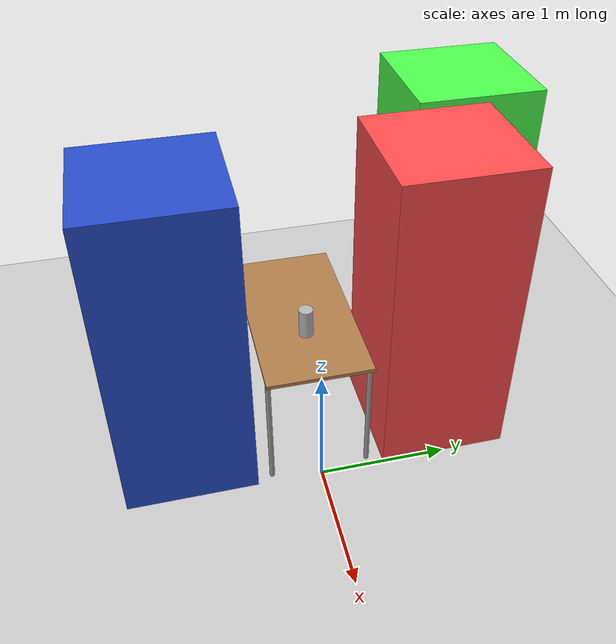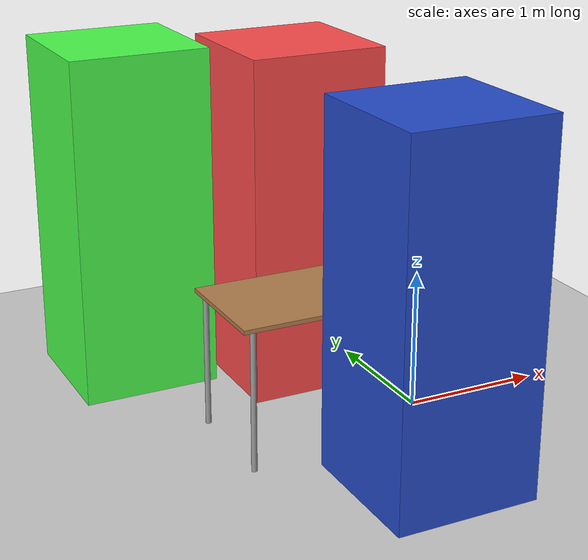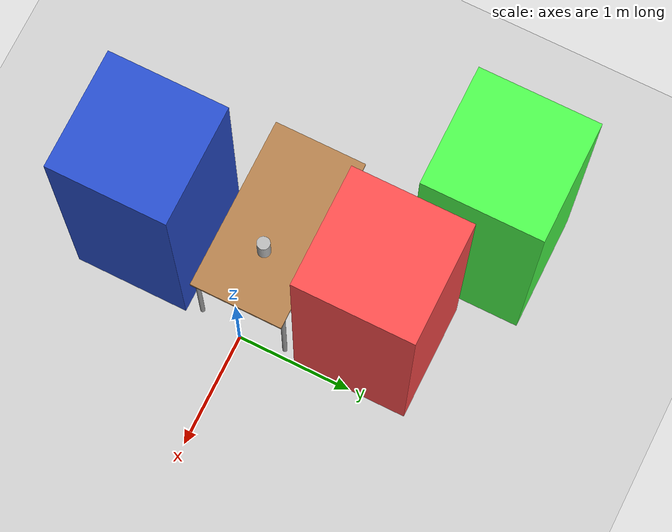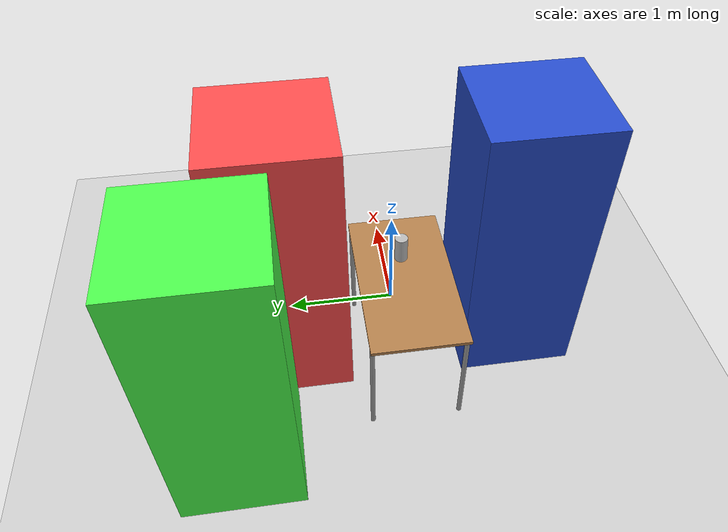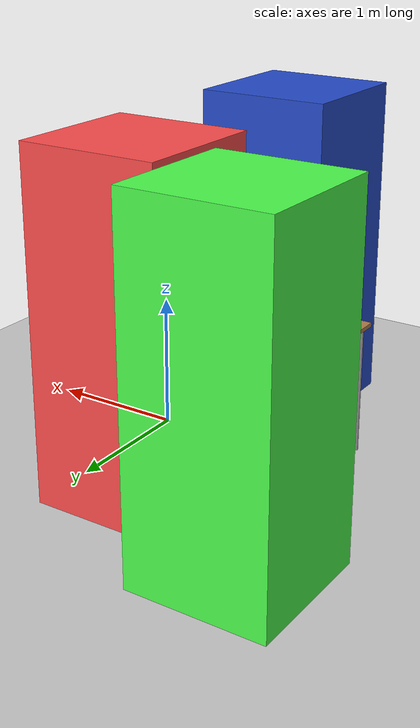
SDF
<sdf version="1.6">
 <world name="default">
  <light name="sun" type="directional">
   <pose>0 0 10 0 -0 0</pose>
   <diffuse>0.8 0.8 0.8 1</diffuse>
   <specular>0.2 0.2 0.2 1</specular>
   <attenuation>
    <range>1000</range>
    <constant>0.9</constant>
    <linear>0.01</linear>
    <quadratic>0.001</quadratic>
   </attenuation>
   <direction>-0.5 0.1 -0.9</direction>
  </light>
  <model name="ground_plane">
   <static>1</static>
   <link name="link">
    <collision name="collision">
     <geometry><plane><normal>0 0 1</normal><size>100 100</size></plane></geometry>
     <surface><friction><ode><mu>100</mu><mu2>50</mu2></ode></friction></surface>
    </collision>
    <visual name="visual">
     <cast_shadows>0</cast_shadows>
     <geometry><plane><normal>0 0 1</normal><size>100 100</size></plane></geometry>
     <material>
      <script><uri>file://media/materials/scripts/gazebo.material</uri><name>Gazebo/Grey</name></script>
     </material>
    </visual>
   </link>
  </model>
  <gravity>0 0 -9.8</gravity>
  <magnetic_field>6e-06 2.3e-05 -4.2e-05</magnetic_field>
  <atmosphere type="adiabatic"/>
  <physics name="default_physics" default="0" type="ode">
   <max_step_size>0.001</max_step_size>
   <real_time_factor>1</real_time_factor>
   <real_time_update_rate>1000</real_time_update_rate>
  </physics>
  <scene><ambient>0.4 0.4 0.4 1</ambient><background>0.7 0.7 0.7 1</background><shadows>1</shadows></scene>
  <spherical_coordinates>
   <surface_model>EARTH_WGS84</surface_model>
   <latitude_deg>0</latitude_deg>
   <longitude_deg>0</longitude_deg>
   <elevation>0</elevation>
   <heading_deg>0</heading_deg>
  </spherical_coordinates>
  <model name="table">
   <static>1</static>
   <link name="link">
    <collision name="surface">
     <pose>0 0 1 0 -0 0</pose>
     <geometry><box><size>1.5 0.8 0.03</size></box></geometry>
     <surface><friction><ode><mu>0.6</mu><mu2>0.6</mu2></ode></friction></surface>
    </collision>
    <visual name="visual1">
     <pose>0 0 1 0 -0 0</pose>
     <geometry><box><size>1.5 0.8 0.03</size></box></geometry>
     <material>
      <script><uri>file://media/materials/scripts/gazebo.material</uri><name>Gazebo/Wood</name></script>
     </material>
    </visual>
    <collision name="front_left_leg">
     <pose>0.68 0.38 0.5 0 -0 0</pose>
     <geometry><cylinder><radius>0.02</radius><length>1</length></cylinder></geometry>
    </collision>
    <visual name="front_left_leg">
     <pose>0.68 0.38 0.5 0 -0 0</pose>
     <geometry><cylinder><radius>0.02</radius><length>1</length></cylinder></geometry>
     <material>
      <script><uri>file://media/materials/scripts/gazebo.material</uri><name>Gazebo/Grey</name></script>
     </material>
    </visual>
    <collision name="front_right_leg">
     <pose>0.68 -0.38 0.5 0 -0 0</pose>
     <geometry><cylinder><radius>0.02</radius><length>1</length></cylinder></geometry>
    </collision>
    <visual name="front_right_leg">
     <pose>0.68 -0.38 0.5 0 -0 0</pose>
     <geometry><cylinder><radius>0.02</radius><length>1</length></cylinder></geometry>
     <material>
      <script><uri>file://media/materials/scripts/gazebo.material</uri><name>Gazebo/Grey</name></script>
     </material>
    </visual>
    <collision name="back_right_leg">
     <pose>-0.68 -0.38 0.5 0 -0 0</pose>
     <geometry><cylinder><radius>0.02</radius><length>1</length></cylinder></geometry>
    </collision>
    <visual name="back_right_leg">
     <pose>-0.68 -0.38 0.5 0 -0 0</pose>
     <geometry><cylinder><radius>0.02</radius><length>1</length></cylinder></geometry>
     <material>
      <script><uri>file://media/materials/scripts/gazebo.material</uri><name>Gazebo/Grey</name></script>
     </material>
    </visual>
    <collision name="back_left_leg">
     <pose>-0.68 0.38 0.5 0 -0 0</pose>
     <geometry><cylinder><radius>0.02</radius><length>1</length></cylinder></geometry>
    </collision>
    <visual name="back_left_leg">
     <pose>-0.68 0.38 0.5 0 -0 0</pose>
     <geometry><cylinder><radius>0.02</radius><length>1</length></cylinder></geometry>
     <material>
      <script><uri>file://media/materials/scripts/gazebo.material</uri><name>Gazebo/Grey</name></script>
     </material>
    </visual>
   </link>
   <pose>-0.75 0 0 0 -0 0</pose>
  </model>
  <model name="unit_box_blue">
   <link name="link">
    <inertial>
     <mass>1</mass>
     <inertia>
      <ixx>0.166667</ixx>
      <ixy>0</ixy>
      <ixz>0</ixz>
      <iyy>0.166667</iyy>
      <iyz>0</iyz>
      <izz>0.166667</izz>
     </inertia>
     <pose>0 0 1 0 -0 0</pose>
    </inertial>
    <visual name="visual">
     <geometry><box><size>1 1 2.5</size></box></geometry>
     <material>
      <script><name>Gazebo/Blue</name><uri>file://media/materials/scripts/gazebo.material</uri></script>
      <shader type="pixel"><normal_map>__default__</normal_map></shader>
      <ambient>0.3 0.3 1 1</ambient>
      <diffuse>0.7 0.7 1 1</diffuse>
      <specular>0.01 0.01 0.01 1</specular>
      <emissive>0 0 0 1</emissive>
     </material>
    </visual>
    <collision name="collision">
     <geometry><box><size>1 1 2.5</size></box></geometry>
     <surface>
      <friction>
       <ode><mu>1</mu><mu2>1</mu2><fdir1>0 0 0</fdir1><slip1>0</slip1><slip2>0</slip2></ode>
       <torsional>
        <coefficient>1</coefficient>
        <patch_radius>0</patch_radius>
        <surface_radius>0</surface_radius>
        <use_patch_radius>1</use_patch_radius>
        <ode><slip>0</slip></ode>
       </torsional>
      </friction>
      <bounce><restitution_coefficient>0</restitution_coefficient><threshold>1e+06</threshold></bounce>
      <contact>
       <collide_without_contact>0</collide_without_contact>
       <collide_without_contact_bitmask>1</collide_without_contact_bitmask>
       <collide_bitmask>1</collide_bitmask>
       <ode>
        <soft_cfm>0</soft_cfm>
        <soft_erp>0.2</soft_erp>
        <kp>1e+13</kp>
        <kd>1</kd>
        <max_vel>0.01</max_vel>
        <min_depth>0</min_depth>
       </ode>
       <bullet>
        <split_impulse>1</split_impulse>
        <split_impulse_penetration_threshold>-0.01</split_impulse_penetration_threshold>
        <soft_cfm>0</soft_cfm>
        <soft_erp>0.2</soft_erp>
        <kp>1e+13</kp>
        <kd>1</kd>
       </bullet>
      </contact>
     </surface>
    </collision>
   </link>
   <static>0</static>
   <pose>-0.5 -0.999999 1.25 0 0 -3.2e-05</pose>
  </model>
  <model name="unit_box_red">
   <link name="link">
    <inertial>
     <mass>1</mass>
     <inertia>
      <ixx>0.166667</ixx>
      <ixy>0</ixy>
      <ixz>0</ixz>
      <iyy>0.166667</iyy>
      <iyz>0</iyz>
      <izz>0.166667</izz>
     </inertia>
    </inertial>
    <visual name="visual">
     <geometry><box><size>1 1 2.5</size></box></geometry>
     <material>
      <script><name>Gazebo/Grey</name><uri>file://media/materials/scripts/gazebo.material</uri></script>
      <shader type="pixel"><normal_map>__default__</normal_map></shader>
      <ambient>1 0.3 0.3 1</ambient>
      <diffuse>0.7 0.7 0.7 1</diffuse>
      <specular>0.01 0.01 0.01 1</specular>
      <emissive>0 0 0 1</emissive>
     </material>
    </visual>
    <collision name="collision">
     <geometry><box><size>1 1 2.5</size></box></geometry>
     <surface>
      <friction>
       <ode><mu>1</mu><mu2>1</mu2><fdir1>0 0 0</fdir1><slip1>0</slip1><slip2>0</slip2></ode>
       <torsional>
        <coefficient>1</coefficient>
        <patch_radius>0</patch_radius>
        <surface_radius>0</surface_radius>
        <use_patch_radius>1</use_patch_radius>
        <ode><slip>0</slip></ode>
       </torsional>
      </friction>
      <bounce><restitution_coefficient>0</restitution_coefficient><threshold>1e+06</threshold></bounce>
      <contact>
       <collide_without_contact>0</collide_without_contact>
       <collide_without_contact_bitmask>1</collide_without_contact_bitmask>
       <collide_bitmask>1</collide_bitmask>
       <ode>
        <soft_cfm>0</soft_cfm>
        <soft_erp>0.2</soft_erp>
        <kp>1e+13</kp>
        <kd>1</kd>
        <max_vel>0.01</max_vel>
        <min_depth>0</min_depth>
       </ode>
       <bullet>
        <split_impulse>1</split_impulse>
        <split_impulse_penetration_threshold>-0.01</split_impulse_penetration_threshold>
        <soft_cfm>0</soft_cfm>
        <soft_erp>0.2</soft_erp>
        <kp>1e+13</kp>
        <kd>1</kd>
       </bullet>
      </contact>
     </surface>
    </collision>
   </link>
   <static>0</static>
   <pose>-0.500001 1 1.25 -1e-06 -1e-06 0.000635</pose>
  </model>
  <model name="unit_box_green">
   <link name="link">
    <inertial>
     <mass>1</mass>
     <inertia>
      <ixx>0.166667</ixx>
      <ixy>0</ixy>
      <ixz>0</ixz>
      <iyy>0.166667</iyy>
      <iyz>0</iyz>
      <izz>0.166667</izz>
     </inertia>
    </inertial>
    <visual name="visual">
     <geometry><box><size>1 1 2.5</size></box></geometry>
     <material>
      <script><name>Gazebo/Grey</name><uri>file://media/materials/scripts/gazebo.material</uri></script>
      <shader type="pixel"><normal_map>__default__</normal_map></shader>
      <ambient>0.3 1 0.3 1</ambient>
      <diffuse>0.7 0.7 0.7 1</diffuse>
      <specular>0.01 0.01 0.01 1</specular>
      <emissive>0 0 0 1</emissive>
     </material>
    </visual>
    <collision name="collision">
     <geometry><box><size>1 1 2.5</size></box></geometry>
     <surface>
      <friction>
       <ode><mu>1</mu><mu2>1</mu2><fdir1>0 0 0</fdir1><slip1>0</slip1><slip2>0</slip2></ode>
       <torsional>
        <coefficient>1</coefficient>
        <patch_radius>0</patch_radius>
        <surface_radius>0</surface_radius>
        <use_patch_radius>1</use_patch_radius>
        <ode><slip>0</slip></ode>
       </torsional>
      </friction>
      <bounce><restitution_coefficient>0</restitution_coefficient><threshold>1e+06</threshold></bounce>
      <contact>
       <collide_without_contact>0</collide_without_contact>
       <collide_without_contact_bitmask>1</collide_without_contact_bitmask>
       <collide_bitmask>1</collide_bitmask>
       <ode>
        <soft_cfm>0</soft_cfm>
        <soft_erp>0.2</soft_erp>
        <kp>1e+13</kp>
        <kd>1</kd>
        <max_vel>0.01</max_vel>
        <min_depth>0</min_depth>
       </ode>
       <bullet>
        <split_impulse>1</split_impulse>
        <split_impulse_penetration_threshold>-0.01</split_impulse_penetration_threshold>
        <soft_cfm>0</soft_cfm>
        <soft_erp>0.2</soft_erp>
        <kp>1e+13</kp>
        <kd>1</kd>
       </bullet>
      </contact>
     </surface>
    </collision>
   </link>
   <static>0</static>
   <pose>-1.6 1.50001 1.25 3e-06 0 2.3e-05</pose>
  </model>
  <model name="beer">
   <link name="link">
    <pose>0 0 0.115 0 -0 0</pose>
    <inertial>
     <mass>0.39</mass>
     <inertia><ixx>0.00058</ixx><ixy>0</ixy><ixz>0</ixz><iyy>0.00058</iyy><iyz>0</iyz><izz>0.00019</izz></inertia>
    </inertial>
    <collision name="collision">
     <geometry><cylinder><radius>0.055</radius><length>0.23</length></cylinder></geometry>
    </collision>
    <visual name="visual">
     <geometry><cylinder><radius>0.055</radius><length>0.23</length></cylinder></geometry>
     <material>
      <script>
       <uri>model://beer/materials/scripts</uri>
       <uri>model://beer/materials/textures</uri>
       <name>Beer/Diffuse</name>
      </script>
     </material>
    </visual>
   </link>
   <pose>-0.500005 -1e-06 1.015 -1e-06 2.6e-05 0.000166</pose>
  </model>
 </world>
</sdf>
